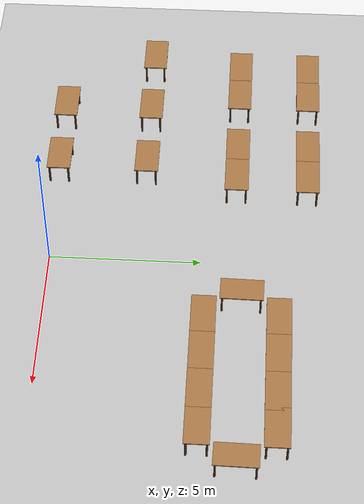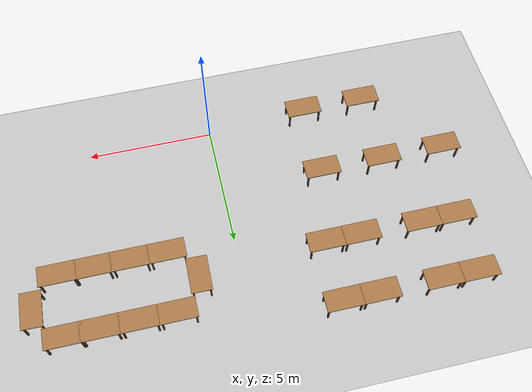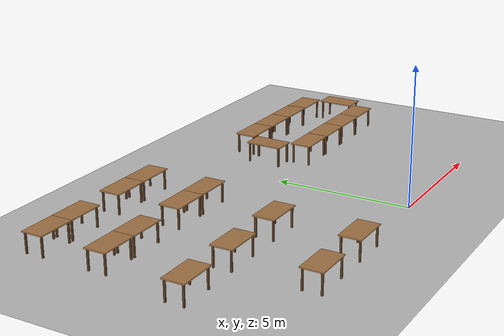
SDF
<sdf version="1.6">
 <world name="restaurant_20x20">
  <model name="ground_plane">
   <static>1</static>
   <link name="link">
    <collision name="collision">
     <geometry><plane><normal>0 0 1</normal><size>100 100</size></plane></geometry>
     <surface><friction><ode><mu>100</mu><mu2>50</mu2></ode></friction></surface>
    </collision>
    <visual name="visual">
     <cast_shadows>0</cast_shadows>
     <geometry><plane><normal>0 0 1</normal><size>100 100</size></plane></geometry>
     <material>
      <script><uri>file://media/materials/scripts/gazebo.material</uri><name>Gazebo/Grey</name></script>
     </material>
    </visual>
   </link>
  </model>
  <model name="tables_layout">
   <static>1</static>
   <link name="table_single_5">
    <pose>-6.5 0 0 0 0 0</pose>
    <visual name="top_visual">
     <pose>0 0 0.75 0 0 0</pose>
     <geometry><box><size>1.4 0.8 0.04</size></box></geometry>
     <material>
      <script><uri>file://media/materials/scripts/gazebo.material</uri><name>Gazebo/Wood</name></script>
     </material>
    </visual>
    <collision name="top_collision">
     <pose>0 0 0.75 0 0 0</pose>
     <geometry><box><size>1.4 0.8 0.04</size></box></geometry>
    </collision>
    <visual name="leg_fl_visual">
     <pose>0.62 0.32 0.375 0 0 0</pose>
     <geometry><box><size>0.06 0.06 0.75</size></box></geometry>
     <material><ambient>0.35 0.22 0.12 1</ambient><diffuse>0.35 0.22 0.12 1</diffuse></material>
    </visual>
    <visual name="leg_fr_visual">
     <pose>0.62 -0.32 0.375 0 0 0</pose>
     <geometry><box><size>0.06 0.06 0.75</size></box></geometry>
     <material><ambient>0.35 0.22 0.12 1</ambient><diffuse>0.35 0.22 0.12 1</diffuse></material>
    </visual>
    <visual name="leg_bl_visual">
     <pose>-0.62 0.32 0.375 0 0 0</pose>
     <geometry><box><size>0.06 0.06 0.75</size></box></geometry>
     <material><ambient>0.35 0.22 0.12 1</ambient><diffuse>0.35 0.22 0.12 1</diffuse></material>
    </visual>
    <visual name="leg_br_visual">
     <pose>-0.62 -0.32 0.375 0 0 0</pose>
     <geometry><box><size>0.06 0.06 0.75</size></box></geometry>
     <material><ambient>0.35 0.22 0.12 1</ambient><diffuse>0.35 0.22 0.12 1</diffuse></material>
    </visual>
   </link>
   <link name="table_single_6">
    <pose>-4.0 0 0 0 0 0</pose>
    <visual name="top_visual">
     <pose>0 0 0.75 0 0 0</pose>
     <geometry><box><size>1.4 0.8 0.04</size></box></geometry>
     <material>
      <script><uri>file://media/materials/scripts/gazebo.material</uri><name>Gazebo/Wood</name></script>
     </material>
    </visual>
    <collision name="top_collision">
     <pose>0 0 0.75 0 0 0</pose>
     <geometry><box><size>1.4 0.8 0.04</size></box></geometry>
    </collision>
    <visual name="leg_fl_visual">
     <pose>0.62 0.32 0.375 0 0 0</pose>
     <geometry><box><size>0.06 0.06 0.75</size></box></geometry>
     <material><ambient>0.35 0.22 0.12 1</ambient><diffuse>0.35 0.22 0.12 1</diffuse></material>
    </visual>
    <visual name="leg_fr_visual">
     <pose>0.62 -0.32 0.375 0 0 0</pose>
     <geometry><box><size>0.06 0.06 0.75</size></box></geometry>
     <material><ambient>0.35 0.22 0.12 1</ambient><diffuse>0.35 0.22 0.12 1</diffuse></material>
    </visual>
    <visual name="leg_bl_visual">
     <pose>-0.62 0.32 0.375 0 0 0</pose>
     <geometry><box><size>0.06 0.06 0.75</size></box></geometry>
     <material><ambient>0.35 0.22 0.12 1</ambient><diffuse>0.35 0.22 0.12 1</diffuse></material>
    </visual>
    <visual name="leg_br_visual">
     <pose>-0.62 -0.32 0.375 0 0 0</pose>
     <geometry><box><size>0.06 0.06 0.75</size></box></geometry>
     <material><ambient>0.35 0.22 0.12 1</ambient><diffuse>0.35 0.22 0.12 1</diffuse></material>
    </visual>
   </link>
   <link name="table_single_7">
    <pose>-9.0 3.0 0 0 0 0</pose>
    <visual name="top_visual">
     <pose>0 0 0.75 0 0 0</pose>
     <geometry><box><size>1.4 0.8 0.04</size></box></geometry>
     <material>
      <script><uri>file://media/materials/scripts/gazebo.material</uri><name>Gazebo/Wood</name></script>
     </material>
    </visual>
    <collision name="top_collision">
     <pose>0 0 0.75 0 0 0</pose>
     <geometry><box><size>1.4 0.8 0.04</size></box></geometry>
    </collision>
    <visual name="leg_fl_visual">
     <pose>0.62 0.32 0.375 0 0 0</pose>
     <geometry><box><size>0.06 0.06 0.75</size></box></geometry>
     <material><ambient>0.35 0.22 0.12 1</ambient><diffuse>0.35 0.22 0.12 1</diffuse></material>
    </visual>
    <visual name="leg_fr_visual">
     <pose>0.62 -0.32 0.375 0 0 0</pose>
     <geometry><box><size>0.06 0.06 0.75</size></box></geometry>
     <material><ambient>0.35 0.22 0.12 1</ambient><diffuse>0.35 0.22 0.12 1</diffuse></material>
    </visual>
    <visual name="leg_bl_visual">
     <pose>-0.62 0.32 0.375 0 0 0</pose>
     <geometry><box><size>0.06 0.06 0.75</size></box></geometry>
     <material><ambient>0.35 0.22 0.12 1</ambient><diffuse>0.35 0.22 0.12 1</diffuse></material>
    </visual>
    <visual name="leg_br_visual">
     <pose>-0.62 -0.32 0.375 0 0 0</pose>
     <geometry><box><size>0.06 0.06 0.75</size></box></geometry>
     <material><ambient>0.35 0.22 0.12 1</ambient><diffuse>0.35 0.22 0.12 1</diffuse></material>
    </visual>
   </link>
   <link name="table_single_8">
    <pose>-6.5 3.0 0 0 0 0</pose>
    <visual name="top_visual">
     <pose>0 0 0.75 0 0 0</pose>
     <geometry><box><size>1.4 0.8 0.04</size></box></geometry>
     <material>
      <script><uri>file://media/materials/scripts/gazebo.material</uri><name>Gazebo/Wood</name></script>
     </material>
    </visual>
    <collision name="top_collision">
     <pose>0 0 0.75 0 0 0</pose>
     <geometry><box><size>1.4 0.8 0.04</size></box></geometry>
    </collision>
    <visual name="leg_fl_visual">
     <pose>0.62 0.32 0.375 0 0 0</pose>
     <geometry><box><size>0.06 0.06 0.75</size></box></geometry>
     <material><ambient>0.35 0.22 0.12 1</ambient><diffuse>0.35 0.22 0.12 1</diffuse></material>
    </visual>
    <visual name="leg_fr_visual">
     <pose>0.62 -0.32 0.375 0 0 0</pose>
     <geometry><box><size>0.06 0.06 0.75</size></box></geometry>
     <material><ambient>0.35 0.22 0.12 1</ambient><diffuse>0.35 0.22 0.12 1</diffuse></material>
    </visual>
    <visual name="leg_bl_visual">
     <pose>-0.62 0.32 0.375 0 0 0</pose>
     <geometry><box><size>0.06 0.06 0.75</size></box></geometry>
     <material><ambient>0.35 0.22 0.12 1</ambient><diffuse>0.35 0.22 0.12 1</diffuse></material>
    </visual>
    <visual name="leg_br_visual">
     <pose>-0.62 -0.32 0.375 0 0 0</pose>
     <geometry><box><size>0.06 0.06 0.75</size></box></geometry>
     <material><ambient>0.35 0.22 0.12 1</ambient><diffuse>0.35 0.22 0.12 1</diffuse></material>
    </visual>
   </link>
   <link name="table_single_9">
    <pose>-4.0 3.0 0 0 0 0</pose>
    <visual name="top_visual">
     <pose>0 0 0.75 0 0 0</pose>
     <geometry><box><size>1.4 0.8 0.04</size></box></geometry>
     <material>
      <script><uri>file://media/materials/scripts/gazebo.material</uri><name>Gazebo/Wood</name></script>
     </material>
    </visual>
    <collision name="top_collision">
     <pose>0 0 0.75 0 0 0</pose>
     <geometry><box><size>1.4 0.8 0.04</size></box></geometry>
    </collision>
    <visual name="leg_fl_visual">
     <pose>0.62 0.32 0.375 0 0 0</pose>
     <geometry><box><size>0.06 0.06 0.75</size></box></geometry>
     <material><ambient>0.35 0.22 0.12 1</ambient><diffuse>0.35 0.22 0.12 1</diffuse></material>
    </visual>
    <visual name="leg_fr_visual">
     <pose>0.62 -0.32 0.375 0 0 0</pose>
     <geometry><box><size>0.06 0.06 0.75</size></box></geometry>
     <material><ambient>0.35 0.22 0.12 1</ambient><diffuse>0.35 0.22 0.12 1</diffuse></material>
    </visual>
    <visual name="leg_bl_visual">
     <pose>-0.62 0.32 0.375 0 0 0</pose>
     <geometry><box><size>0.06 0.06 0.75</size></box></geometry>
     <material><ambient>0.35 0.22 0.12 1</ambient><diffuse>0.35 0.22 0.12 1</diffuse></material>
    </visual>
    <visual name="leg_br_visual">
     <pose>-0.62 -0.32 0.375 0 0 0</pose>
     <geometry><box><size>0.06 0.06 0.75</size></box></geometry>
     <material><ambient>0.35 0.22 0.12 1</ambient><diffuse>0.35 0.22 0.12 1</diffuse></material>
    </visual>
   </link>
   <link name="table_couple_1">
    <pose>-8.5 8.5 0 0 0 0</pose>
    <visual name="top_visual">
     <pose>0 0 0.75 0 0 0</pose>
     <geometry><box><size>1.4 0.8 0.04</size></box></geometry>
     <material>
      <script><uri>file://media/materials/scripts/gazebo.material</uri><name>Gazebo/Wood</name></script>
     </material>
    </visual>
    <collision name="top_collision">
     <pose>0 0 0.75 0 0 0</pose>
     <geometry><box><size>1.4 0.8 0.04</size></box></geometry>
    </collision>
    <visual name="leg_fl_visual">
     <pose>0.62 0.32 0.375 0 0 0</pose>
     <geometry><box><size>0.06 0.06 0.75</size></box></geometry>
     <material><ambient>0.35 0.22 0.12 1</ambient><diffuse>0.35 0.22 0.12 1</diffuse></material>
    </visual>
    <visual name="leg_fr_visual">
     <pose>0.62 -0.32 0.375 0 0 0</pose>
     <geometry><box><size>0.06 0.06 0.75</size></box></geometry>
     <material><ambient>0.35 0.22 0.12 1</ambient><diffuse>0.35 0.22 0.12 1</diffuse></material>
    </visual>
    <visual name="leg_bl_visual">
     <pose>-0.62 0.32 0.375 0 0 0</pose>
     <geometry><box><size>0.06 0.06 0.75</size></box></geometry>
     <material><ambient>0.35 0.22 0.12 1</ambient><diffuse>0.35 0.22 0.12 1</diffuse></material>
    </visual>
    <visual name="leg_br_visual">
     <pose>-0.62 -0.32 0.375 0 0 0</pose>
     <geometry><box><size>0.06 0.06 0.75</size></box></geometry>
     <material><ambient>0.35 0.22 0.12 1</ambient><diffuse>0.35 0.22 0.12 1</diffuse></material>
    </visual>
   </link>
   <link name="table_couple_2">
    <pose>-7.1 8.5 0 0 0 0</pose>
    <visual name="top_visual">
     <pose>0 0 0.75 0 0 0</pose>
     <geometry><box><size>1.4 0.8 0.04</size></box></geometry>
     <material>
      <script><uri>file://media/materials/scripts/gazebo.material</uri><name>Gazebo/Wood</name></script>
     </material>
    </visual>
    <collision name="top_collision">
     <pose>0 0 0.75 0 0 0</pose>
     <geometry><box><size>1.4 0.8 0.04</size></box></geometry>
    </collision>
    <visual name="leg_fl_visual">
     <pose>0.62 0.32 0.375 0 0 0</pose>
     <geometry><box><size>0.06 0.06 0.75</size></box></geometry>
     <material><ambient>0.35 0.22 0.12 1</ambient><diffuse>0.35 0.22 0.12 1</diffuse></material>
    </visual>
    <visual name="leg_fr_visual">
     <pose>0.62 -0.32 0.375 0 0 0</pose>
     <geometry><box><size>0.06 0.06 0.75</size></box></geometry>
     <material><ambient>0.35 0.22 0.12 1</ambient><diffuse>0.35 0.22 0.12 1</diffuse></material>
    </visual>
    <visual name="leg_bl_visual">
     <pose>-0.62 0.32 0.375 0 0 0</pose>
     <geometry><box><size>0.06 0.06 0.75</size></box></geometry>
     <material><ambient>0.35 0.22 0.12 1</ambient><diffuse>0.35 0.22 0.12 1</diffuse></material>
    </visual>
    <visual name="leg_br_visual">
     <pose>-0.62 -0.32 0.375 0 0 0</pose>
     <geometry><box><size>0.06 0.06 0.75</size></box></geometry>
     <material><ambient>0.35 0.22 0.12 1</ambient><diffuse>0.35 0.22 0.12 1</diffuse></material>
    </visual>
   </link>
   <link name="table_couple_3">
    <pose>-8.5 6.1 0 0 0 0</pose>
    <visual name="top_visual">
     <pose>0 0 0.75 0 0 0</pose>
     <geometry><box><size>1.4 0.8 0.04</size></box></geometry>
     <material>
      <script><uri>file://media/materials/scripts/gazebo.material</uri><name>Gazebo/Wood</name></script>
     </material>
    </visual>
    <collision name="top_collision">
     <pose>0 0 0.75 0 0 0</pose>
     <geometry><box><size>1.4 0.8 0.04</size></box></geometry>
    </collision>
    <visual name="leg_fl_visual">
     <pose>0.62 0.32 0.375 0 0 0</pose>
     <geometry><box><size>0.06 0.06 0.75</size></box></geometry>
     <material><ambient>0.35 0.22 0.12 1</ambient><diffuse>0.35 0.22 0.12 1</diffuse></material>
    </visual>
    <visual name="leg_fr_visual">
     <pose>0.62 -0.32 0.375 0 0 0</pose>
     <geometry><box><size>0.06 0.06 0.75</size></box></geometry>
     <material><ambient>0.35 0.22 0.12 1</ambient><diffuse>0.35 0.22 0.12 1</diffuse></material>
    </visual>
    <visual name="leg_bl_visual">
     <pose>-0.62 0.32 0.375 0 0 0</pose>
     <geometry><box><size>0.06 0.06 0.75</size></box></geometry>
     <material><ambient>0.35 0.22 0.12 1</ambient><diffuse>0.35 0.22 0.12 1</diffuse></material>
    </visual>
    <visual name="leg_br_visual">
     <pose>-0.62 -0.32 0.375 0 0 0</pose>
     <geometry><box><size>0.06 0.06 0.75</size></box></geometry>
     <material><ambient>0.35 0.22 0.12 1</ambient><diffuse>0.35 0.22 0.12 1</diffuse></material>
    </visual>
   </link>
   <link name="table_couple_4">
    <pose>-7.1 6.1 0 0 0 0</pose>
    <visual name="top_visual">
     <pose>0 0 0.75 0 0 0</pose>
     <geometry><box><size>1.4 0.8 0.04</size></box></geometry>
     <material>
      <script><uri>file://media/materials/scripts/gazebo.material</uri><name>Gazebo/Wood</name></script>
     </material>
    </visual>
    <collision name="top_collision">
     <pose>0 0 0.75 0 0 0</pose>
     <geometry><box><size>1.4 0.8 0.04</size></box></geometry>
    </collision>
    <visual name="leg_fl_visual">
     <pose>0.62 0.32 0.375 0 0 0</pose>
     <geometry><box><size>0.06 0.06 0.75</size></box></geometry>
     <material><ambient>0.35 0.22 0.12 1</ambient><diffuse>0.35 0.22 0.12 1</diffuse></material>
    </visual>
    <visual name="leg_fr_visual">
     <pose>0.62 -0.32 0.375 0 0 0</pose>
     <geometry><box><size>0.06 0.06 0.75</size></box></geometry>
     <material><ambient>0.35 0.22 0.12 1</ambient><diffuse>0.35 0.22 0.12 1</diffuse></material>
    </visual>
    <visual name="leg_bl_visual">
     <pose>-0.62 0.32 0.375 0 0 0</pose>
     <geometry><box><size>0.06 0.06 0.75</size></box></geometry>
     <material><ambient>0.35 0.22 0.12 1</ambient><diffuse>0.35 0.22 0.12 1</diffuse></material>
    </visual>
    <visual name="leg_br_visual">
     <pose>-0.62 -0.32 0.375 0 0 0</pose>
     <geometry><box><size>0.06 0.06 0.75</size></box></geometry>
     <material><ambient>0.35 0.22 0.12 1</ambient><diffuse>0.35 0.22 0.12 1</diffuse></material>
    </visual>
   </link>
   <link name="table_couple_5">
    <pose>-4.7 8.5 0 0 0 0</pose>
    <visual name="top_visual">
     <pose>0 0 0.75 0 0 0</pose>
     <geometry><box><size>1.4 0.8 0.04</size></box></geometry>
     <material>
      <script><uri>file://media/materials/scripts/gazebo.material</uri><name>Gazebo/Wood</name></script>
     </material>
    </visual>
    <collision name="top_collision">
     <pose>0 0 0.75 0 0 0</pose>
     <geometry><box><size>1.4 0.8 0.04</size></box></geometry>
    </collision>
    <visual name="leg_fl_visual">
     <pose>0.62 0.32 0.375 0 0 0</pose>
     <geometry><box><size>0.06 0.06 0.75</size></box></geometry>
     <material><ambient>0.35 0.22 0.12 1</ambient><diffuse>0.35 0.22 0.12 1</diffuse></material>
    </visual>
    <visual name="leg_fr_visual">
     <pose>0.62 -0.32 0.375 0 0 0</pose>
     <geometry><box><size>0.06 0.06 0.75</size></box></geometry>
     <material><ambient>0.35 0.22 0.12 1</ambient><diffuse>0.35 0.22 0.12 1</diffuse></material>
    </visual>
    <visual name="leg_bl_visual">
     <pose>-0.62 0.32 0.375 0 0 0</pose>
     <geometry><box><size>0.06 0.06 0.75</size></box></geometry>
     <material><ambient>0.35 0.22 0.12 1</ambient><diffuse>0.35 0.22 0.12 1</diffuse></material>
    </visual>
    <visual name="leg_br_visual">
     <pose>-0.62 -0.32 0.375 0 0 0</pose>
     <geometry><box><size>0.06 0.06 0.75</size></box></geometry>
     <material><ambient>0.35 0.22 0.12 1</ambient><diffuse>0.35 0.22 0.12 1</diffuse></material>
    </visual>
   </link>
   <link name="table_couple_6">
    <pose>-3.3 8.5 0 0 0 0</pose>
    <visual name="top_visual">
     <pose>0 0 0.75 0 0 0</pose>
     <geometry><box><size>1.4 0.8 0.04</size></box></geometry>
     <material>
      <script><uri>file://media/materials/scripts/gazebo.material</uri><name>Gazebo/Wood</name></script>
     </material>
    </visual>
    <collision name="top_collision">
     <pose>0 0 0.75 0 0 0</pose>
     <geometry><box><size>1.4 0.8 0.04</size></box></geometry>
    </collision>
    <visual name="leg_fl_visual">
     <pose>0.62 0.32 0.375 0 0 0</pose>
     <geometry><box><size>0.06 0.06 0.75</size></box></geometry>
     <material><ambient>0.35 0.22 0.12 1</ambient><diffuse>0.35 0.22 0.12 1</diffuse></material>
    </visual>
    <visual name="leg_fr_visual">
     <pose>0.62 -0.32 0.375 0 0 0</pose>
     <geometry><box><size>0.06 0.06 0.75</size></box></geometry>
     <material><ambient>0.35 0.22 0.12 1</ambient><diffuse>0.35 0.22 0.12 1</diffuse></material>
    </visual>
    <visual name="leg_bl_visual">
     <pose>-0.62 0.32 0.375 0 0 0</pose>
     <geometry><box><size>0.06 0.06 0.75</size></box></geometry>
     <material><ambient>0.35 0.22 0.12 1</ambient><diffuse>0.35 0.22 0.12 1</diffuse></material>
    </visual>
    <visual name="leg_br_visual">
     <pose>-0.62 -0.32 0.375 0 0 0</pose>
     <geometry><box><size>0.06 0.06 0.75</size></box></geometry>
     <material><ambient>0.35 0.22 0.12 1</ambient><diffuse>0.35 0.22 0.12 1</diffuse></material>
    </visual>
   </link>
   <link name="table_couple_7">
    <pose>-4.7 6.1 0 0 0 0</pose>
    <visual name="top_visual">
     <pose>0 0 0.75 0 0 0</pose>
     <geometry><box><size>1.4 0.8 0.04</size></box></geometry>
     <material>
      <script><uri>file://media/materials/scripts/gazebo.material</uri><name>Gazebo/Wood</name></script>
     </material>
    </visual>
    <collision name="top_collision">
     <pose>0 0 0.75 0 0 0</pose>
     <geometry><box><size>1.4 0.8 0.04</size></box></geometry>
    </collision>
    <visual name="leg_fl_visual">
     <pose>0.62 0.32 0.375 0 0 0</pose>
     <geometry><box><size>0.06 0.06 0.75</size></box></geometry>
     <material><ambient>0.35 0.22 0.12 1</ambient><diffuse>0.35 0.22 0.12 1</diffuse></material>
    </visual>
    <visual name="leg_fr_visual">
     <pose>0.62 -0.32 0.375 0 0 0</pose>
     <geometry><box><size>0.06 0.06 0.75</size></box></geometry>
     <material><ambient>0.35 0.22 0.12 1</ambient><diffuse>0.35 0.22 0.12 1</diffuse></material>
    </visual>
    <visual name="leg_bl_visual">
     <pose>-0.62 0.32 0.375 0 0 0</pose>
     <geometry><box><size>0.06 0.06 0.75</size></box></geometry>
     <material><ambient>0.35 0.22 0.12 1</ambient><diffuse>0.35 0.22 0.12 1</diffuse></material>
    </visual>
    <visual name="leg_br_visual">
     <pose>-0.62 -0.32 0.375 0 0 0</pose>
     <geometry><box><size>0.06 0.06 0.75</size></box></geometry>
     <material><ambient>0.35 0.22 0.12 1</ambient><diffuse>0.35 0.22 0.12 1</diffuse></material>
    </visual>
   </link>
   <link name="table_couple_8">
    <pose>-3.3 6.1 0 0 0 0</pose>
    <visual name="top_visual">
     <pose>0 0 0.75 0 0 0</pose>
     <geometry><box><size>1.4 0.8 0.04</size></box></geometry>
     <material>
      <script><uri>file://media/materials/scripts/gazebo.material</uri><name>Gazebo/Wood</name></script>
     </material>
    </visual>
    <collision name="top_collision">
     <pose>0 0 0.75 0 0 0</pose>
     <geometry><box><size>1.4 0.8 0.04</size></box></geometry>
    </collision>
    <visual name="leg_fl_visual">
     <pose>0.62 0.32 0.375 0 0 0</pose>
     <geometry><box><size>0.06 0.06 0.75</size></box></geometry>
     <material><ambient>0.35 0.22 0.12 1</ambient><diffuse>0.35 0.22 0.12 1</diffuse></material>
    </visual>
    <visual name="leg_fr_visual">
     <pose>0.62 -0.32 0.375 0 0 0</pose>
     <geometry><box><size>0.06 0.06 0.75</size></box></geometry>
     <material><ambient>0.35 0.22 0.12 1</ambient><diffuse>0.35 0.22 0.12 1</diffuse></material>
    </visual>
    <visual name="leg_bl_visual">
     <pose>-0.62 0.32 0.375 0 0 0</pose>
     <geometry><box><size>0.06 0.06 0.75</size></box></geometry>
     <material><ambient>0.35 0.22 0.12 1</ambient><diffuse>0.35 0.22 0.12 1</diffuse></material>
    </visual>
    <visual name="leg_br_visual">
     <pose>-0.62 -0.32 0.375 0 0 0</pose>
     <geometry><box><size>0.06 0.06 0.75</size></box></geometry>
     <material><ambient>0.35 0.22 0.12 1</ambient><diffuse>0.35 0.22 0.12 1</diffuse></material>
    </visual>
   </link>
   <link name="meeting_top_1">
    <pose>2.6 7.6 0 0 0 0</pose>
    <visual name="top_visual">
     <pose>0 0 0.75 0 0 0</pose>
     <geometry><box><size>1.4 0.8 0.04</size></box></geometry>
     <material>
      <script><uri>file://media/materials/scripts/gazebo.material</uri><name>Gazebo/Wood</name></script>
     </material>
    </visual>
    <collision name="top_collision">
     <pose>0 0 0.75 0 0 0</pose>
     <geometry><box><size>1.4 0.8 0.04</size></box></geometry>
    </collision>
    <visual name="leg_fl_visual">
     <pose>0.62 0.32 0.375 0 0 0</pose>
     <geometry><box><size>0.06 0.06 0.75</size></box></geometry>
     <material><ambient>0.35 0.22 0.12 1</ambient><diffuse>0.35 0.22 0.12 1</diffuse></material>
    </visual>
    <visual name="leg_fr_visual">
     <pose>0.62 -0.32 0.375 0 0 0</pose>
     <geometry><box><size>0.06 0.06 0.75</size></box></geometry>
     <material><ambient>0.35 0.22 0.12 1</ambient><diffuse>0.35 0.22 0.12 1</diffuse></material>
    </visual>
    <visual name="leg_bl_visual">
     <pose>-0.62 0.32 0.375 0 0 0</pose>
     <geometry><box><size>0.06 0.06 0.75</size></box></geometry>
     <material><ambient>0.35 0.22 0.12 1</ambient><diffuse>0.35 0.22 0.12 1</diffuse></material>
    </visual>
    <visual name="leg_br_visual">
     <pose>-0.62 -0.32 0.375 0 0 0</pose>
     <geometry><box><size>0.06 0.06 0.75</size></box></geometry>
     <material><ambient>0.35 0.22 0.12 1</ambient><diffuse>0.35 0.22 0.12 1</diffuse></material>
    </visual>
   </link>
   <link name="meeting_top_2">
    <pose>4 7.6 0 0 0 0</pose>
    <visual name="top_visual">
     <pose>0 0 0.75 0 0 0</pose>
     <geometry><box><size>1.4 0.8 0.04</size></box></geometry>
     <material>
      <script><uri>file://media/materials/scripts/gazebo.material</uri><name>Gazebo/Wood</name></script>
     </material>
    </visual>
    <collision name="top_collision">
     <pose>0 0 0.75 0 0 0</pose>
     <geometry><box><size>1.4 0.8 0.04</size></box></geometry>
    </collision>
    <visual name="leg_fl_visual">
     <pose>0.62 0.32 0.375 0 0 0</pose>
     <geometry><box><size>0.06 0.06 0.75</size></box></geometry>
     <material><ambient>0.35 0.22 0.12 1</ambient><diffuse>0.35 0.22 0.12 1</diffuse></material>
    </visual>
    <visual name="leg_fr_visual">
     <pose>0.62 -0.32 0.375 0 0 0</pose>
     <geometry><box><size>0.06 0.06 0.75</size></box></geometry>
     <material><ambient>0.35 0.22 0.12 1</ambient><diffuse>0.35 0.22 0.12 1</diffuse></material>
    </visual>
    <visual name="leg_bl_visual">
     <pose>-0.62 0.32 0.375 0 0 0</pose>
     <geometry><box><size>0.06 0.06 0.75</size></box></geometry>
     <material><ambient>0.35 0.22 0.12 1</ambient><diffuse>0.35 0.22 0.12 1</diffuse></material>
    </visual>
    <visual name="leg_br_visual">
     <pose>-0.62 -0.32 0.375 0 0 0</pose>
     <geometry><box><size>0.06 0.06 0.75</size></box></geometry>
     <material><ambient>0.35 0.22 0.12 1</ambient><diffuse>0.35 0.22 0.12 1</diffuse></material>
    </visual>
   </link>
   <link name="meeting_top_3">
    <pose>5.4 7.6 0 0 0 0</pose>
    <visual name="top_visual">
     <pose>0 0 0.75 0 0 0</pose>
     <geometry><box><size>1.4 0.8 0.04</size></box></geometry>
     <material>
      <script><uri>file://media/materials/scripts/gazebo.material</uri><name>Gazebo/Wood</name></script>
     </material>
    </visual>
    <collision name="top_collision">
     <pose>0 0 0.75 0 0 0</pose>
     <geometry><box><size>1.4 0.8 0.04</size></box></geometry>
    </collision>
    <visual name="leg_fl_visual">
     <pose>0.62 0.32 0.375 0 0 0</pose>
     <geometry><box><size>0.06 0.06 0.75</size></box></geometry>
     <material><ambient>0.35 0.22 0.12 1</ambient><diffuse>0.35 0.22 0.12 1</diffuse></material>
    </visual>
    <visual name="leg_fr_visual">
     <pose>0.62 -0.32 0.375 0 0 0</pose>
     <geometry><box><size>0.06 0.06 0.75</size></box></geometry>
     <material><ambient>0.35 0.22 0.12 1</ambient><diffuse>0.35 0.22 0.12 1</diffuse></material>
    </visual>
    <visual name="leg_bl_visual">
     <pose>-0.62 0.32 0.375 0 0 0</pose>
     <geometry><box><size>0.06 0.06 0.75</size></box></geometry>
     <material><ambient>0.35 0.22 0.12 1</ambient><diffuse>0.35 0.22 0.12 1</diffuse></material>
    </visual>
    <visual name="leg_br_visual">
     <pose>-0.62 -0.32 0.375 0 0 0</pose>
     <geometry><box><size>0.06 0.06 0.75</size></box></geometry>
     <material><ambient>0.35 0.22 0.12 1</ambient><diffuse>0.35 0.22 0.12 1</diffuse></material>
    </visual>
   </link>
   <link name="meeting_top_4">
    <pose>6.7 7.6 0 0 0 0</pose>
    <visual name="top_visual">
     <pose>0 0 0.75 0 0 0</pose>
     <geometry><box><size>1.4 0.8 0.04</size></box></geometry>
     <material>
      <script><uri>file://media/materials/scripts/gazebo.material</uri><name>Gazebo/Wood</name></script>
     </material>
    </visual>
    <collision name="top_collision">
     <pose>0 0 0.75 0 0 0</pose>
     <geometry><box><size>1.4 0.8 0.04</size></box></geometry>
    </collision>
    <visual name="leg_fl_visual">
     <pose>0.62 0.32 0.375 0 0 0</pose>
     <geometry><box><size>0.06 0.06 0.75</size></box></geometry>
     <material><ambient>0.35 0.22 0.12 1</ambient><diffuse>0.35 0.22 0.12 1</diffuse></material>
    </visual>
    <visual name="leg_fr_visual">
     <pose>0.62 -0.32 0.375 0 0 0</pose>
     <geometry><box><size>0.06 0.06 0.75</size></box></geometry>
     <material><ambient>0.35 0.22 0.12 1</ambient><diffuse>0.35 0.22 0.12 1</diffuse></material>
    </visual>
    <visual name="leg_bl_visual">
     <pose>-0.62 0.32 0.375 0 0 0</pose>
     <geometry><box><size>0.06 0.06 0.75</size></box></geometry>
     <material><ambient>0.35 0.22 0.12 1</ambient><diffuse>0.35 0.22 0.12 1</diffuse></material>
    </visual>
    <visual name="leg_br_visual">
     <pose>-0.62 -0.32 0.375 0 0 0</pose>
     <geometry><box><size>0.06 0.06 0.75</size></box></geometry>
     <material><ambient>0.35 0.22 0.12 1</ambient><diffuse>0.35 0.22 0.12 1</diffuse></material>
    </visual>
   </link>
   <link name="meeting_bottom_1">
    <pose>2.6 5.2 0 0 0 0</pose>
    <visual name="top_visual">
     <pose>0 0 0.75 0 0 0</pose>
     <geometry><box><size>1.4 0.8 0.04</size></box></geometry>
     <material>
      <script><uri>file://media/materials/scripts/gazebo.material</uri><name>Gazebo/Wood</name></script>
     </material>
    </visual>
    <collision name="top_collision">
     <pose>0 0 0.75 0 0 0</pose>
     <geometry><box><size>1.4 0.8 0.04</size></box></geometry>
    </collision>
    <visual name="leg_fl_visual">
     <pose>0.62 0.32 0.375 0 0 0</pose>
     <geometry><box><size>0.06 0.06 0.75</size></box></geometry>
     <material><ambient>0.35 0.22 0.12 1</ambient><diffuse>0.35 0.22 0.12 1</diffuse></material>
    </visual>
    <visual name="leg_fr_visual">
     <pose>0.62 -0.32 0.375 0 0 0</pose>
     <geometry><box><size>0.06 0.06 0.75</size></box></geometry>
     <material><ambient>0.35 0.22 0.12 1</ambient><diffuse>0.35 0.22 0.12 1</diffuse></material>
    </visual>
    <visual name="leg_bl_visual">
     <pose>-0.62 0.32 0.375 0 0 0</pose>
     <geometry><box><size>0.06 0.06 0.75</size></box></geometry>
     <material><ambient>0.35 0.22 0.12 1</ambient><diffuse>0.35 0.22 0.12 1</diffuse></material>
    </visual>
    <visual name="leg_br_visual">
     <pose>-0.62 -0.32 0.375 0 0 0</pose>
     <geometry><box><size>0.06 0.06 0.75</size></box></geometry>
     <material><ambient>0.35 0.22 0.12 1</ambient><diffuse>0.35 0.22 0.12 1</diffuse></material>
    </visual>
   </link>
   <link name="meeting_bottom_2">
    <pose>4 5.2 0 0 0 0</pose>
    <visual name="top_visual">
     <pose>0 0 0.75 0 0 0</pose>
     <geometry><box><size>1.4 0.8 0.04</size></box></geometry>
     <material>
      <script><uri>file://media/materials/scripts/gazebo.material</uri><name>Gazebo/Wood</name></script>
     </material>
    </visual>
    <collision name="top_collision">
     <pose>0 0 0.75 0 0 0</pose>
     <geometry><box><size>1.4 0.8 0.04</size></box></geometry>
    </collision>
    <visual name="leg_fl_visual">
     <pose>0.62 0.32 0.375 0 0 0</pose>
     <geometry><box><size>0.06 0.06 0.75</size></box></geometry>
     <material><ambient>0.35 0.22 0.12 1</ambient><diffuse>0.35 0.22 0.12 1</diffuse></material>
    </visual>
    <visual name="leg_fr_visual">
     <pose>0.62 -0.32 0.375 0 0 0</pose>
     <geometry><box><size>0.06 0.06 0.75</size></box></geometry>
     <material><ambient>0.35 0.22 0.12 1</ambient><diffuse>0.35 0.22 0.12 1</diffuse></material>
    </visual>
    <visual name="leg_bl_visual">
     <pose>-0.62 0.32 0.375 0 0 0</pose>
     <geometry><box><size>0.06 0.06 0.75</size></box></geometry>
     <material><ambient>0.35 0.22 0.12 1</ambient><diffuse>0.35 0.22 0.12 1</diffuse></material>
    </visual>
    <visual name="leg_br_visual">
     <pose>-0.62 -0.32 0.375 0 0 0</pose>
     <geometry><box><size>0.06 0.06 0.75</size></box></geometry>
     <material><ambient>0.35 0.22 0.12 1</ambient><diffuse>0.35 0.22 0.12 1</diffuse></material>
    </visual>
   </link>
   <link name="meeting_bottom_3">
    <pose>5.4 5.2 0 0 0 0</pose>
    <visual name="top_visual">
     <pose>0 0 0.75 0 0 0</pose>
     <geometry><box><size>1.4 0.8 0.04</size></box></geometry>
     <material>
      <script><uri>file://media/materials/scripts/gazebo.material</uri><name>Gazebo/Wood</name></script>
     </material>
    </visual>
    <collision name="top_collision">
     <pose>0 0 0.75 0 0 0</pose>
     <geometry><box><size>1.4 0.8 0.04</size></box></geometry>
    </collision>
    <visual name="leg_fl_visual">
     <pose>0.62 0.32 0.375 0 0 0</pose>
     <geometry><box><size>0.06 0.06 0.75</size></box></geometry>
     <material><ambient>0.35 0.22 0.12 1</ambient><diffuse>0.35 0.22 0.12 1</diffuse></material>
    </visual>
    <visual name="leg_fr_visual">
     <pose>0.62 -0.32 0.375 0 0 0</pose>
     <geometry><box><size>0.06 0.06 0.75</size></box></geometry>
     <material><ambient>0.35 0.22 0.12 1</ambient><diffuse>0.35 0.22 0.12 1</diffuse></material>
    </visual>
    <visual name="leg_bl_visual">
     <pose>-0.62 0.32 0.375 0 0 0</pose>
     <geometry><box><size>0.06 0.06 0.75</size></box></geometry>
     <material><ambient>0.35 0.22 0.12 1</ambient><diffuse>0.35 0.22 0.12 1</diffuse></material>
    </visual>
    <visual name="leg_br_visual">
     <pose>-0.62 -0.32 0.375 0 0 0</pose>
     <geometry><box><size>0.06 0.06 0.75</size></box></geometry>
     <material><ambient>0.35 0.22 0.12 1</ambient><diffuse>0.35 0.22 0.12 1</diffuse></material>
    </visual>
   </link>
   <link name="meeting_bottom_4">
    <pose>6.7 5.2 0 0 0 0</pose>
    <visual name="top_visual">
     <pose>0 0 0.75 0 0 0</pose>
     <geometry><box><size>1.4 0.8 0.04</size></box></geometry>
     <material>
      <script><uri>file://media/materials/scripts/gazebo.material</uri><name>Gazebo/Wood</name></script>
     </material>
    </visual>
    <collision name="top_collision">
     <pose>0 0 0.75 0 0 0</pose>
     <geometry><box><size>1.4 0.8 0.04</size></box></geometry>
    </collision>
    <visual name="leg_fl_visual">
     <pose>0.62 0.32 0.375 0 0 0</pose>
     <geometry><box><size>0.06 0.06 0.75</size></box></geometry>
     <material><ambient>0.35 0.22 0.12 1</ambient><diffuse>0.35 0.22 0.12 1</diffuse></material>
    </visual>
    <visual name="leg_fr_visual">
     <pose>0.62 -0.32 0.375 0 0 0</pose>
     <geometry><box><size>0.06 0.06 0.75</size></box></geometry>
     <material><ambient>0.35 0.22 0.12 1</ambient><diffuse>0.35 0.22 0.12 1</diffuse></material>
    </visual>
    <visual name="leg_bl_visual">
     <pose>-0.62 0.32 0.375 0 0 0</pose>
     <geometry><box><size>0.06 0.06 0.75</size></box></geometry>
     <material><ambient>0.35 0.22 0.12 1</ambient><diffuse>0.35 0.22 0.12 1</diffuse></material>
    </visual>
    <visual name="leg_br_visual">
     <pose>-0.62 -0.32 0.375 0 0 0</pose>
     <geometry><box><size>0.06 0.06 0.75</size></box></geometry>
     <material><ambient>0.35 0.22 0.12 1</ambient><diffuse>0.35 0.22 0.12 1</diffuse></material>
    </visual>
   </link>
   <link name="meeting_left">
    <pose>1.6 6.4 0 0 0 1.550</pose>
    <visual name="top_visual">
     <pose>0 0 0.75 0 0 0</pose>
     <geometry><box><size>1.4 0.8 0.04</size></box></geometry>
     <material>
      <script><uri>file://media/materials/scripts/gazebo.material</uri><name>Gazebo/Wood</name></script>
     </material>
    </visual>
    <collision name="top_collision">
     <pose>0 0 0.75 0 0 0</pose>
     <geometry><box><size>1.4 0.8 0.04</size></box></geometry>
    </collision>
    <visual name="leg_fl_visual">
     <pose>0.62 0.32 0.375 0 0 0</pose>
     <geometry><box><size>0.06 0.06 0.75</size></box></geometry>
     <material><ambient>0.35 0.22 0.12 1</ambient><diffuse>0.35 0.22 0.12 1</diffuse></material>
    </visual>
    <visual name="leg_fr_visual">
     <pose>0.62 -0.32 0.375 0 0 0</pose>
     <geometry><box><size>0.06 0.06 0.75</size></box></geometry>
     <material><ambient>0.35 0.22 0.12 1</ambient><diffuse>0.35 0.22 0.12 1</diffuse></material>
    </visual>
    <visual name="leg_bl_visual">
     <pose>-0.62 0.32 0.375 0 0 0</pose>
     <geometry><box><size>0.06 0.06 0.75</size></box></geometry>
     <material><ambient>0.35 0.22 0.12 1</ambient><diffuse>0.35 0.22 0.12 1</diffuse></material>
    </visual>
    <visual name="leg_br_visual">
     <pose>-0.62 -0.32 0.375 0 0 0</pose>
     <geometry><box><size>0.06 0.06 0.75</size></box></geometry>
     <material><ambient>0.35 0.22 0.12 1</ambient><diffuse>0.35 0.22 0.12 1</diffuse></material>
    </visual>
   </link>
   <link name="meeting_righti">
    <pose>7.7 6.4 0 0 0 1.550</pose>
    <visual name="top_visual">
     <pose>0 0 0.75 0 0 0</pose>
     <geometry><box><size>1.4 0.8 0.04</size></box></geometry>
     <material>
      <script><uri>file://media/materials/scripts/gazebo.material</uri><name>Gazebo/Wood</name></script>
     </material>
    </visual>
    <collision name="top_collision">
     <pose>0 0 0.75 0 0 0</pose>
     <geometry><box><size>1.4 0.8 0.04</size></box></geometry>
    </collision>
    <visual name="leg_fl_visual">
     <pose>0.62 0.32 0.375 0 0 0</pose>
     <geometry><box><size>0.06 0.06 0.75</size></box></geometry>
     <material><ambient>0.35 0.22 0.12 1</ambient><diffuse>0.35 0.22 0.12 1</diffuse></material>
    </visual>
    <visual name="leg_fr_visual">
     <pose>0.62 -0.32 0.375 0 0 0</pose>
     <geometry><box><size>0.06 0.06 0.75</size></box></geometry>
     <material><ambient>0.35 0.22 0.12 1</ambient><diffuse>0.35 0.22 0.12 1</diffuse></material>
    </visual>
    <visual name="leg_bl_visual">
     <pose>-0.62 0.32 0.375 0 0 0</pose>
     <geometry><box><size>0.06 0.06 0.75</size></box></geometry>
     <material><ambient>0.35 0.22 0.12 1</ambient><diffuse>0.35 0.22 0.12 1</diffuse></material>
    </visual>
    <visual name="leg_br_visual">
     <pose>-0.62 -0.32 0.375 0 0 0</pose>
     <geometry><box><size>0.06 0.06 0.75</size></box></geometry>
     <material><ambient>0.35 0.22 0.12 1</ambient><diffuse>0.35 0.22 0.12 1</diffuse></material>
    </visual>
   </link>
  </model>
 </world>
</sdf>
